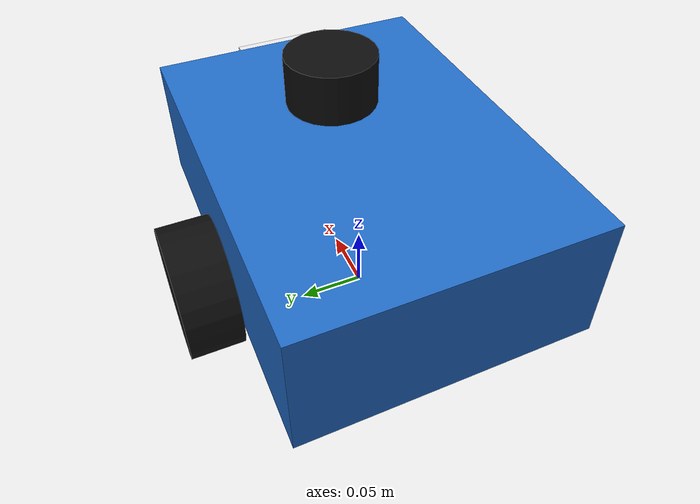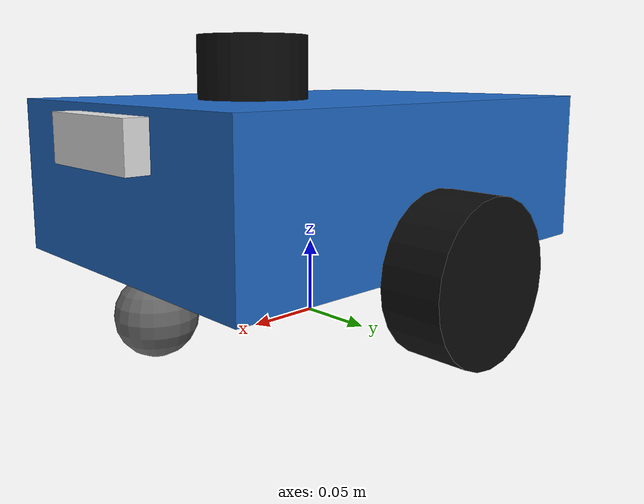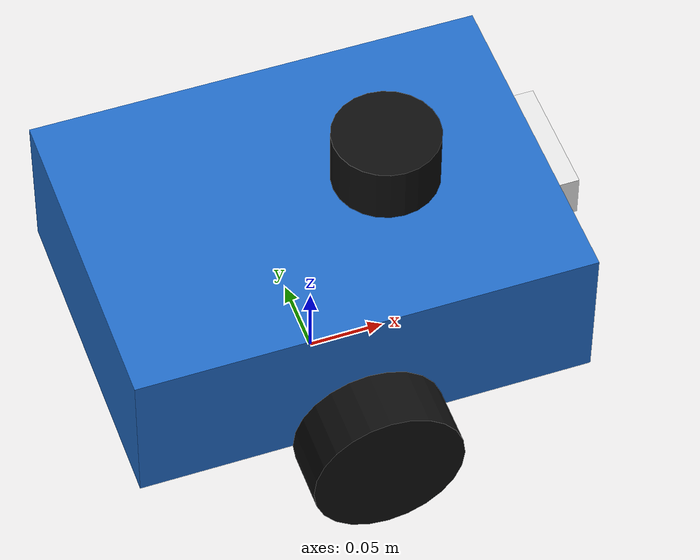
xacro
<?xml version="1.0"?>
<robot xmlns:xacro="http://www.ros.org/wiki/xacro" name="acadbot">

  <xacro:include filename="$(find acadbot_description)/urdf/inertial_macros.xacro"/>
  <xacro:include filename="$(find acadbot_description)/urdf/robot_core.xacro"/>
  <xacro:include filename="$(find acadbot_description)/urdf/sensors.xacro"/>
  <xacro:include filename="$(find acadbot_description)/urdf/gazebo_control.xacro"/>

</robot>

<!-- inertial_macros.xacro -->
<robot xmlns:xacro="http://www.ros.org/wiki/xacro">

  <xacro:macro name="inertial_box" params="mass x y z *origin">
    <inertial>
      <xacro:insert_block name="origin"/>
      <mass value="${mass}"/>
      <inertia
        ixx="${(1.0/12.0) * mass * (y*y + z*z)}" ixy="0.0" ixz="0.0"
        iyy="${(1.0/12.0) * mass * (x*x + z*z)}" iyz="0.0"
        izz="${(1.0/12.0) * mass * (x*x + y*y)}"/>
    </inertial>
  </xacro:macro>

  <xacro:macro name="inertial_cylinder" params="mass length radius *origin">
    <inertial>
      <xacro:insert_block name="origin"/>
      <mass value="${mass}"/>
      <inertia
        ixx="${(1.0/12.0) * mass * (3.0*radius*radius + length*length)}" ixy="0.0" ixz="0.0"
        iyy="${(1.0/12.0) * mass * (3.0*radius*radius + length*length)}" iyz="0.0"
        izz="${(1.0/2.0) * mass * (radius*radius)}"/>
    </inertial>
  </xacro:macro>

  <xacro:macro name="inertial_sphere" params="mass radius *origin">
    <inertial>
      <xacro:insert_block name="origin"/>
      <mass value="${mass}"/>
      <inertia
        ixx="${(2.0/5.0) * mass * (radius*radius)}" ixy="0.0" ixz="0.0"
        iyy="${(2.0/5.0) * mass * (radius*radius)}" iyz="0.0"
        izz="${(2.0/5.0) * mass * (radius*radius)}"/>
    </inertial>
  </xacro:macro>

</robot>

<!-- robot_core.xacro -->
<robot xmlns:xacro="http://www.ros.org/wiki/xacro">

  <!-- ===================== Parameters ===================== -->
  <xacro:property name="base_length" value="0.30"/>
  <xacro:property name="base_width"  value="0.22"/>
  <xacro:property name="base_height" value="0.10"/>
  <xacro:property name="wheel_radius" value="0.05"/>
  <xacro:property name="wheel_width"  value="0.04"/>
  <xacro:property name="wheel_separation" value="0.26"/>  <!-- centre-to-centre -->
  <xacro:property name="wheel_zoff" value="0.0"/>
  <xacro:property name="caster_radius" value="0.025"/>

  <!-- ===================== Materials ===================== -->
  <material name="blue">  <color rgba="0.13 0.42 0.78 1.0"/></material>
  <material name="grey">  <color rgba="0.4 0.4 0.4 1.0"/></material>
  <material name="black"> <color rgba="0.05 0.05 0.05 1.0"/></material>
  <material name="white"> <color rgba="0.9 0.9 0.9 1.0"/></material>

  <!-- ===================== base_footprint ===================== -->
  <!-- A massless frame projected onto the ground; Nav2 reasons about this. -->
  <link name="base_footprint"/>

  <joint name="base_joint" type="fixed">
    <parent link="base_footprint"/>
    <child  link="base_link"/>
    <origin xyz="0 0 ${wheel_radius}" rpy="0 0 0"/>
  </joint>

  <!-- ===================== base_link (chassis) ===================== -->
  <link name="base_link">
    <visual>
      <origin xyz="0 0 ${base_height/2}" rpy="0 0 0"/>
      <geometry><box size="${base_length} ${base_width} ${base_height}"/></geometry>
      <material name="blue"/>
    </visual>
    <collision>
      <origin xyz="0 0 ${base_height/2}" rpy="0 0 0"/>
      <geometry><box size="${base_length} ${base_width} ${base_height}"/></geometry>
    </collision>
    <xacro:inertial_box mass="2.0" x="${base_length}" y="${base_width}" z="${base_height}">
      <origin xyz="0 0 ${base_height/2}" rpy="0 0 0"/>
    </xacro:inertial_box>
  </link>

  <!-- ===================== Drive wheels ===================== -->
  <xacro:macro name="wheel" params="prefix y_reflect">
    <link name="${prefix}_wheel">
      <visual>
        <origin xyz="0 0 0" rpy="${pi/2} 0 0"/>
        <geometry><cylinder radius="${wheel_radius}" length="${wheel_width}"/></geometry>
        <material name="black"/>
      </visual>
      <collision>
        <origin xyz="0 0 0" rpy="${pi/2} 0 0"/>
        <geometry><cylinder radius="${wheel_radius}" length="${wheel_width}"/></geometry>
      </collision>
      <xacro:inertial_cylinder mass="0.3" length="${wheel_width}" radius="${wheel_radius}">
        <origin xyz="0 0 0" rpy="${pi/2} 0 0"/>
      </xacro:inertial_cylinder>
    </link>

    <joint name="${prefix}_wheel_joint" type="continuous">
      <parent link="base_link"/>
      <child  link="${prefix}_wheel"/>
      <origin xyz="0 ${y_reflect * wheel_separation/2} 0" rpy="0 0 0"/>
      <axis xyz="0 1 0"/>
    </joint>
  </xacro:macro>

  <xacro:wheel prefix="left"  y_reflect="1"/>
  <xacro:wheel prefix="right" y_reflect="-1"/>

  <!-- ===================== Caster wheel ===================== -->
  <link name="caster_wheel">
    <visual>
      <geometry><sphere radius="${caster_radius}"/></geometry>
      <material name="grey"/>
    </visual>
    <collision>
      <geometry><sphere radius="${caster_radius}"/></geometry>
    </collision>
    <xacro:inertial_sphere mass="0.05" radius="${caster_radius}">
      <origin xyz="0 0 0" rpy="0 0 0"/>
    </xacro:inertial_sphere>
  </link>

  <joint name="caster_wheel_joint" type="fixed">
    <parent link="base_link"/>
    <child  link="caster_wheel"/>
    <origin xyz="${base_length/2 - caster_radius} 0 ${-(wheel_radius - caster_radius)}" rpy="0 0 0"/>
  </joint>

  <!-- Low-friction caster so it slides instead of dragging (set in Gazebo). -->
  <gazebo reference="caster_wheel">
    <mu1>0.001</mu1>
    <mu2>0.001</mu2>
  </gazebo>

</robot>

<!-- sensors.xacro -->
<robot xmlns:xacro="http://www.ros.org/wiki/xacro">

  <!-- 2D LiDAR                                                       -->
  <link name="lidar_link">
    <visual>
      <geometry><cylinder radius="0.035" length="0.04"/></geometry>
      <material name="black"/>
    </visual>
    <collision>
      <geometry><cylinder radius="0.035" length="0.04"/></geometry>
    </collision>
    <xacro:inertial_cylinder mass="0.1" length="0.04" radius="0.035">
      <origin xyz="0 0 0" rpy="0 0 0"/>
    </xacro:inertial_cylinder>
  </link>

  <joint name="lidar_joint" type="fixed">
    <parent link="base_link"/>
    <child  link="lidar_link"/>
    <origin xyz="0.05 0 ${0.10 + 0.02}" rpy="0 0 0"/>
  </joint>

  <gazebo reference="lidar_link">
    <sensor name="lidar" type="gpu_lidar">
      <pose>0 0 0 0 0 0</pose>
      <topic>scan</topic>
      <update_rate>10</update_rate>
      <always_on>true</always_on>
      <visualize>true</visualize>
      <gz_frame_id>lidar_link</gz_frame_id>
      <lidar>
        <scan>
          <horizontal>
            <samples>360</samples>
            <resolution>1.0</resolution>
            <min_angle>-3.141592</min_angle>
            <max_angle>3.141592</max_angle>
          </horizontal>
          <vertical>
            <samples>1</samples>
            <resolution>1.0</resolution>
            <min_angle>0.0</min_angle>
            <max_angle>0.0</max_angle>
          </vertical>
        </scan>
        <range>
          <min>0.12</min>
          <max>12.0</max>
          <resolution>0.01</resolution>
        </range>
        <noise>
          <type>gaussian</type>
          <mean>0.0</mean>
          <stddev>0.01</stddev>
        </noise>
      </lidar>
    </sensor>
  </gazebo>

  <!-- RGBD camera (for the Visual SLAM session)                      -->
  <link name="camera_link">
    <visual>
      <geometry><box size="0.03 0.08 0.03"/></geometry>
      <material name="white"/>
    </visual>
    <collision>
      <geometry><box size="0.03 0.08 0.03"/></geometry>
    </collision>
    <xacro:inertial_box mass="0.05" x="0.03" y="0.08" z="0.03">
      <origin xyz="0 0 0" rpy="0 0 0"/>
    </xacro:inertial_box>
  </link>

  <joint name="camera_joint" type="fixed">
    <parent link="base_link"/>
    <child  link="camera_link"/>
    <origin xyz="${0.30/2} 0 0.08" rpy="0 0 0"/>
  </joint>

  <!-- Optical frame: REP-103 says optical frames are x-right, y-down, z-forward. -->
  <link name="camera_optical_link"/>
  <joint name="camera_optical_joint" type="fixed">
    <parent link="camera_link"/>
    <child  link="camera_optical_link"/>
    <origin xyz="0 0 0" rpy="${-pi/2} 0 ${-pi/2}"/>
  </joint>

  <gazebo reference="camera_link">
    <sensor name="rgbd_camera" type="rgbd_camera">
      <pose>0 0 0 0 0 0</pose>
      <topic>camera</topic>
      <update_rate>15</update_rate>
      <always_on>true</always_on>
      <gz_frame_id>camera_optical_link</gz_frame_id>
      <camera>
        <horizontal_fov>1.047</horizontal_fov>
        <image>
          <width>640</width>
          <height>480</height>
          <format>R8G8B8</format>
        </image>
        <clip>
          <near>0.05</near>
          <far>10.0</far>
        </clip>
      </camera>
    </sensor>
  </gazebo>

  <!-- IMU                                                            -->
  <link name="imu_link">
    <visual>
      <geometry><box size="0.02 0.02 0.01"/></geometry>
      <material name="grey"/>
    </visual>
    <xacro:inertial_box mass="0.01" x="0.02" y="0.02" z="0.01">
      <origin xyz="0 0 0" rpy="0 0 0"/>
    </xacro:inertial_box>
  </link>

  <joint name="imu_joint" type="fixed">
    <parent link="base_link"/>
    <child  link="imu_link"/>
    <origin xyz="0 0 0.05" rpy="0 0 0"/>
  </joint>

  <gazebo reference="imu_link">
    <sensor name="imu" type="imu">
      <topic>imu</topic>
      <update_rate>100</update_rate>
      <always_on>true</always_on>
      <gz_frame_id>imu_link</gz_frame_id>
    </sensor>
  </gazebo>

</robot>
